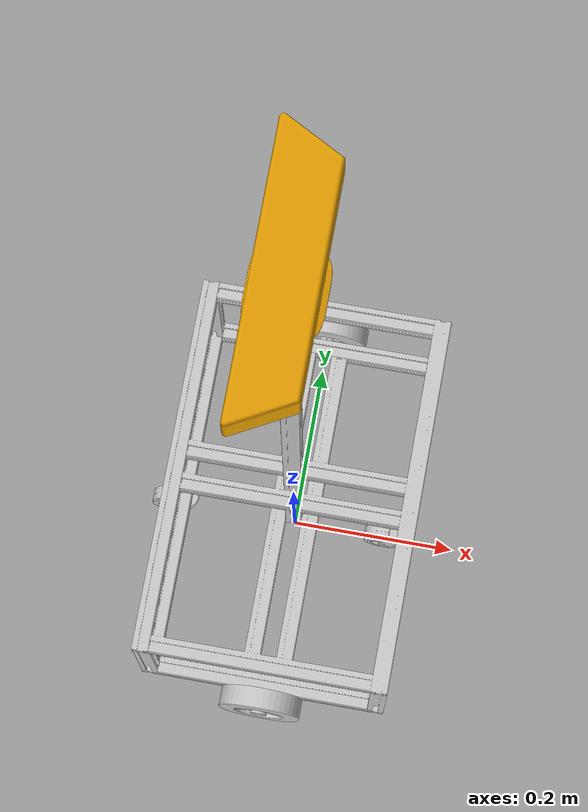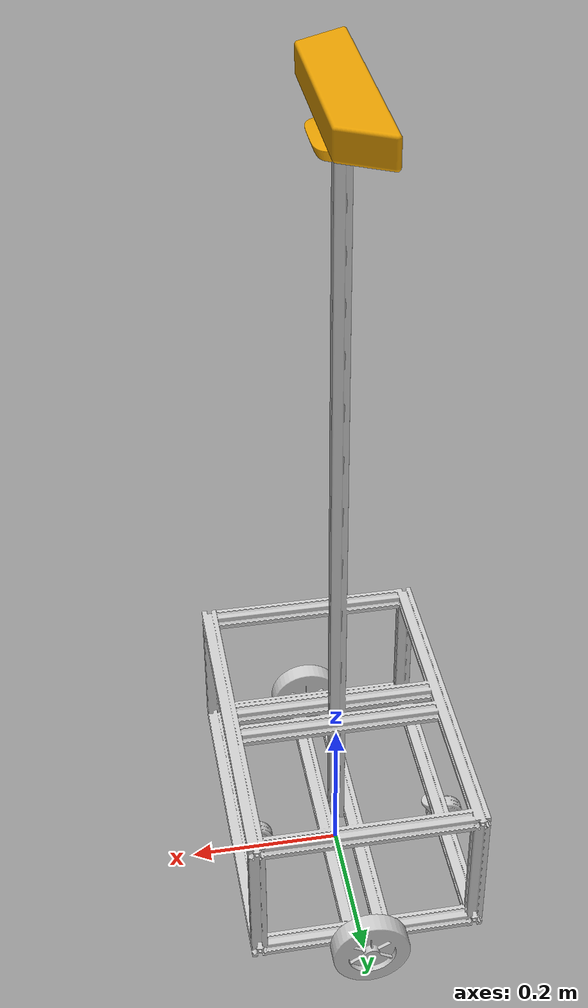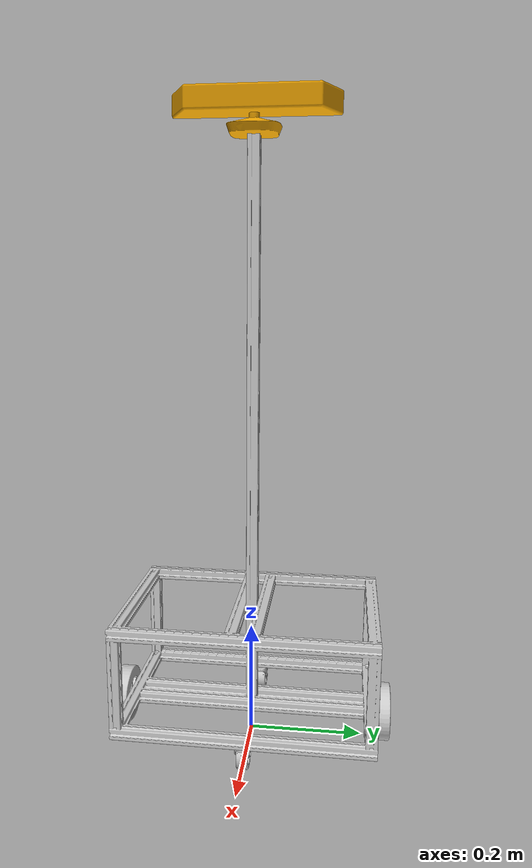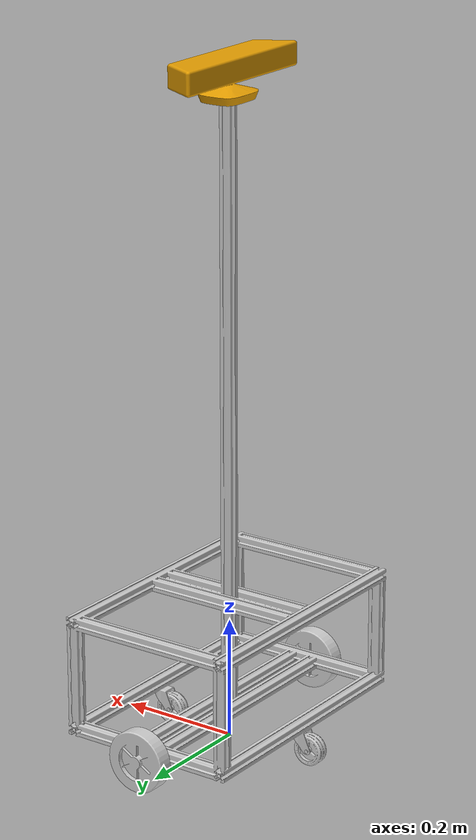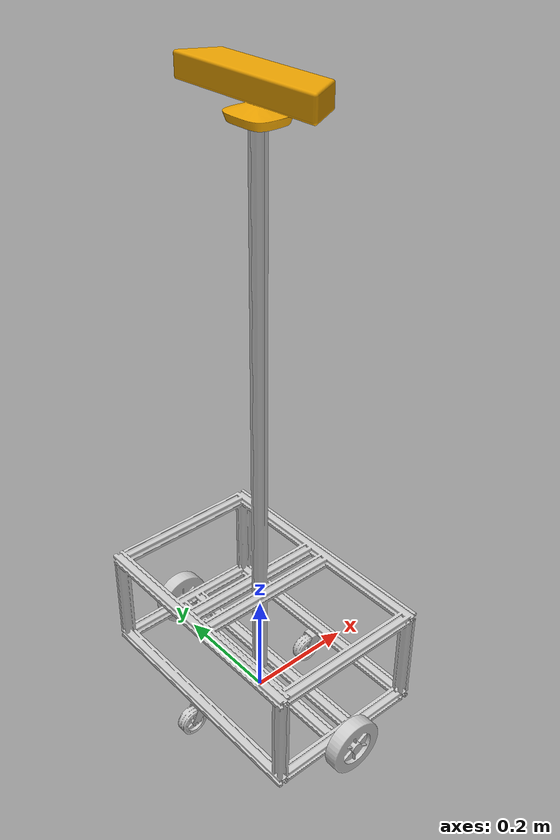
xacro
<?xml version="1.0"?>
  <robot xmlns:xacro="http://ros.org/wiki/xacro" name="anya_base">

  <xacro:include filename="$(find anya_slam1)/urdf/kinect.urdf.xacro" />
  <xacro:include filename="$(find anya_slam1)/urdf/wheel.urdf.xacro"  />

  <xacro:property name="brs_l" value="-1.59" />
  <xacro:property name="brs_u" value="1.59"  />

  <xacro:property name="bls_l" value="-1.59" />
  <xacro:property name="bls_u" value="1.59"  />

  <xacro:property name="bh_l" value="-3.14159" />
  <xacro:property name="bh_u" value="3.14159"  />

   <link name="base_link">
   </link>

   <link name="body_link">

    <visual>
      <origin rpy="0 0 0" xyz="0 -0.048 0"/>
      <geometry>
         <mesh filename="package://anya_slam1/meshes/frame.dae" scale="0.001 0.001 0.001"/>
      </geometry>
    </visual>

    <collision>
      <origin rpy="0 0 0" xyz="0 -0.048 0" />
      <geometry>
        <mesh filename="package://anya_slam1/meshes/frame.stl" scale="0.001 0.001 0.001"/>
      </geometry><limit lower="${brs_l}" upper="${brs_u}" velocity="1.0" effort="60.0"/>
    </collision>

    <inertial>
      <mass value="2600"/>
      <origin rpy="0 0 0" xyz="0 -0.048 0"/>
      <inertia ixx="100" ixy="0" ixz="0" iyy="100" iyz="0" izz="100"/>
    </inertial>
   </link>

   <joint name="world_joint" type="fixed">
     <parent link="base_link"/>
     <child link="body_link"/>
     <origin xyz="0.0 0.0 0.0" rpy="-1.5750 0.0 0.0"/>
   </joint>

<!-- 4 wheels -->
<!-- Leftwheel -->

     <joint name="joint_left_wheel" type="continuous">
         <parent link="body_link"/>
         <child link="link_left_wheel"/>
         <axis xyz="1 0 0"/>
         <origin xyz="0 -0.050 -0.251" rpy="0 1.5750 0"/>
     </joint>

<!-- Rightwheel -->

     <joint name="joint_right_wheel" type="continuous">
         <parent link="body_link"/>
         <child link="link_right_wheel"/>
         <axis xyz="1 0 0"/>
         <origin xyz="0 -0.050 0.251" rpy="0.0 4.71239 0.0"/>
     </joint>

<!-- Joint_castor_front-->
<!-- Frame-->
    <joint name="joint_castor_frame_front" type="continuous">
         <parent link="body_link"/>
         <child link="castor_frame_link_front"/>
         <axis xyz="0 0 1"/>
         <origin xyz="0.135 -0.048 0" rpy="1.5750 0 0"/>
     </joint>

 <!-- Wheel-->
    <joint name="joint_castor_wheel_front" type="continuous">
         <parent link="castor_frame_link_front"/>
         <child link="castor_wheel_link_front"/>
         <axis xyz="0 1 0"/>
         <origin xyz="-0.02125 -0.0125 -0.030" rpy="0 0 0"/>
     </joint>

<!-- Joint_castor_back-->
<!-- Frame-->
    <joint name="joint_castor_frame_back" type="continuous">
         <parent link="body_link"/>
         <child link="castor_frame_link_back"/>
         <axis xyz="0 0 1"/>
         <origin xyz="-0.135 -0.048 0" rpy="1.5750 0 0"/>
     </joint>

 <!-- Wheel-->
    <joint name="joint_castor_wheel_back" type="continuous">
         <parent link="castor_frame_link_back"/>
         <child link="castor_wheel_link_back"/>
         <axis xyz="0 1 0"/>
         <origin xyz="-0.02125 -0.0125 -0.030" rpy="0 0 0"/>
     </joint>

 <!-- Kinect-->
      <joint name="body_kinect" type="fixed">
         <parent link="body_link"/>
         <child link="kinect_link"/>
         <origin xyz="0 -1.075 0" rpy="1.5750 3.14159 0"/>
    </joint>

<!--ONE-->
<transmission name ="Trans_1">
  <type>transmission_interface/SimpleTransmission</type>
  <joint name="joint_left_wheel">
      <hardwareInterface>hardware_interface/VelocityJointInterface</hardwareInterface>
  </joint>
  <actuator name="Motor1">
      <hardwareInterface>hardware_interface/VelocityJointInterface</hardwareInterface>
      <mechanicalReduction>1</mechanicalReduction>
  </actuator>
</transmission>

<!--Two-->
<transmission name ="Trans_2">
  <type>transmission_interface/SimpleTransmission</type>
  <joint name="joint_right_wheel">
      <hardwareInterface>hardware_interface/VelocityJointInterface</hardwareInterface>
  </joint>
  <actuator name="Motor1">
    <hardwareInterface>hardware_interface/VelocityJointInterface</hardwareInterface>
    <mechanicalReduction>1</mechanicalReduction>
  </actuator>
</transmission>

<gazebo>
    <plugin name="control" filename="libgazebo_ros_control.so"/>
</gazebo>

<gazebo>
<plugin name="joint_state_publisher" filename="libgazebo_ros_joint_state_publisher.so">
        <jointName>joint_left_wheel,joint_right_wheel,joint_castor_frame_front,joint_castor_wheel_front,joint_castor_frame_back,joint_castor_wheel_back</jointName>
    </plugin>
</gazebo>

</robot>

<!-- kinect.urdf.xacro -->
<robot xmlns:xacro="http://ros.org/wiki/xacro" name="anya_kinectkinect">

    <link name="kinect_link">
        <visual>
            <origin xyz="0 0 0" rpy="0 0 1.57079632679"/>
            <geometry>
                <mesh filename="package://anya_final/meshes/sensors/kinect.dae" />
            </geometry>
        </visual>
        <collision>
            <origin xyz="0 0 0" rpy="0 0 1.57079632679"/>
            <geometry>
                <mesh filename="package://anya_final/meshes/sensors/kinect.stl" />
            </geometry>
        </collision>
        <inertial>
            <origin xyz="0.0 0.0 0.0" rpy="0.0 0.0 1.5707932"/>
            <mass value="10.0"/>
            <inertia ixx="0.0" ixy="0.0" ixz="0.0" iyy="0.0" iyz="0.0" izz="0.0"/>
        </inertial>
    </link>

        <link name="kinect_depth_frame"/>
        <joint name="kinect_depth_joint" type="fixed">
            <parent link="kinect_link"/>
            <child link="kinect_depth_frame" />
            <origin xyz="0 -0.02  0" rpy="0 0 0"/>
        </joint>

        <link name="kinect_rgb_frame"/>
        <joint name="kinect_rgb_joint" type="fixed">
            <parent link="kinect_link"/>
            <child link="kinect_rgb_frame" />
            <origin xyz="0 -0.045  0" rpy="0 0 0"/>
        </joint>

        <link name="kinect_depth_optical_frame"/>
        <joint name="kinect_depth_optical_joint" type="fixed">
            <parent link="kinect_depth_frame"/>
            <child link="kinect_depth_optical_frame" />
            <origin xyz="0 0 0" rpy="1.57079632679 0 1.57079632679"/>
        </joint>

        <link name="kinect_rgb_optical_frame"/>
        <joint name="kinect_rgb_optical_joint" type="fixed">
            <parent link="kinect_rgb_frame"/>
            <child link="kinect_rgb_optical_frame" />
            <origin xyz="0 0 0" rpy="1.57079632679 0 1.57079632679"/>
        </joint>

        <gazebo reference="kinect_link">
            <sensor type="depth" name="kinect">
                <always_on>true</always_on>
                <update_rate>20.0</update_rate>
                <camera>
                    <horizontal_fov>1.047198</horizontal_fov>
                    <image>
                        <format>R8G8B8</format>
                        <width>640</width>
                        <height>480</height>
                    </image>
                    <clip>
                        <near>0.05</near>
                        <far>3.0</far>
                    </clip>
                </camera>
                <plugin name="kinect_controller" filename="libgazebo_ros_openni_kinect.so">
                    <cameraName>anya_kinect</cameraName>
                    <alwaysOn>true</alwaysOn>
                    <updateRate>0</updateRate>
                    <imageTopicName>/camera/color/image_raw</imageTopicName>
                    <cameraInfoTopicName>/camera/color/camera_info</cameraInfoTopicName>
                    <depthImageTopicName>/camera/depth/image_raw</depthImageTopicName>
                    <depthImageCameraInfoTopicName>/camera/depth/camera_info</depthImageCameraInfoTopicName>
                    <pointCloudTopicName>/camera/depth/points</pointCloudTopicName>
                    <frameName>kinect_link</frameName>
                    <baseline>0.1</baseline>
                    <distortion_k1>0.0</distortion_k1>
                    <distortion_k2>0.0</distortion_k2>
                    <distortion_k3>0.0</distortion_k3>
                    <distortion_t1>0.0</distortion_t1>
                    <distortion_t2>0.0</distortion_t2>
                    <pointCloudCutoff>0.5</pointCloudCutoff>
                    <pointCloudCutoffMax>3.0</pointCloudCutoffMax>
                </plugin>
            </sensor>
        </gazebo>
</robot>

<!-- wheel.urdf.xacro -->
<robot xmlns:xacro="http://ros.org/wiki/xacro" name="anya_wheel">

<!-- Left Wheel link -->

   <link name="link_left_wheel">
    <inertial>
      <mass value="187"/>
      <origin rpy="0 0 0" xyz="0 0 0"/>
      <inertia ixx="100" ixy="0" ixz="0" iyy="100" iyz="0" izz="100"/>
    </inertial>

    <collision>
       <origin rpy="0 0 0" xyz="0 0 0" />
      <geometry>
        <mesh filename="package://anya_slam1/meshes/wheel.stl" scale="0.001 0.001 0.001"/>
      </geometry>
    </collision>

    <visual>
      <origin rpy="0 0 0" xyz="0 0 0"/>
      <geometry>
         <mesh filename="package://anya_slam1/meshes/wheel.dae" scale="0.001 0.001 0.001"/>
      </geometry>
    </visual>
  </link>

  <!-- Right Wheel link -->

  <link name="link_right_wheel">
    <inertial>
      <mass value="187"/>
      <origin rpy="0 0 0" xyz="0 0 0"/>
      <inertia ixx="100" ixy="0" ixz="0" iyy="100" iyz="0" izz="100"/>
    </inertial>

    <collision>
       <origin rpy="0 0 0" xyz="0 0 0" />
      <geometry>
        <mesh filename="package://anya_slam1/meshes/wheel.stl" scale="0.001 0.001 0.001"/>
      </geometry>
    </collision>

    <visual>
      <origin rpy="0 0 0" xyz="0 0 0"/>
      <geometry>
         <mesh filename="package://anya_slam1/meshes/wheel.dae" scale="0.001 0.001 0.001"/>
      </geometry>
    </visual>
  </link>

 <!-- Castor Front Wheel link -->

  <!-- Castor back Wheel link -->

<!-- Castor_frame front link-->
  <link name="castor_frame_link_front">
    <inertial>
      <mass value="75"/>
      <origin rpy="0 0 0" xyz="0 0 0"/>
      <inertia ixx="100" ixy="0" ixz="0" iyy="100" iyz="0" izz="100"/>
    </inertial>

    <collision>
      <origin rpy="0 0 0" xyz="0 0 0" />
      <geometry>
        <mesh filename="package://anya_slam1/meshes/castor_frame.stl" scale="0.5 0.5 0.5"/>
      </geometry>
    </collision>

    <visual>
      <origin rpy="0 0 0" xyz="0 0 0"/>
      <geometry>
         <mesh filename="package://anya_slam1/meshes/castor_frame.dae" scale="0.5 0.5 0.5"/>
      </geometry>
    </visual>
  </link>
 <!-- Castor_wheel_front link-->

<link name="castor_wheel_link_front">
    <inertial>
      <mass value="100"/>
      <origin rpy="0 0 0" xyz="0 0 0"/>
      <inertia ixx="100" ixy="0" ixz="0" iyy="100" iyz="0" izz="100"/>
    </inertial>

    <collision>
      <origin rpy="0 0 0" xyz="0 0 0" />
      <geometry>
        <mesh filename="package://anya_slam1/meshes/castor_wheel.stl" scale="0.5 0.5 0.5"/>
      </geometry>
    </collision>

    <visual>
      <origin rpy="0 0 0" xyz="0 0 0"/>
      <geometry>
         <mesh filename="package://anya_slam1/meshes/castor_wheel.dae" scale="0.5 0.5 0.5"/>
      </geometry>
    </visual>
  </link>

<!-- Castor_frame back link-->
  <link name="castor_frame_link_back">
    <inertial>
      <mass value="75"/>
      <origin rpy="0 0 0" xyz="0 0 0"/>
      <inertia ixx="100" ixy="0" ixz="0" iyy="100" iyz="0" izz="100"/>
    </inertial>

    <collision>
      <origin rpy="0 0 0" xyz="0 0 0" />
      <geometry>
        <mesh filename="package://anya_slam1/meshes/castor_frame.stl" scale="0.5 0.5 0.5"/>
      </geometry>
    </collision>

    <visual>
      <origin rpy="0 0 0" xyz="0 0 0"/>
      <geometry>
         <mesh filename="package://anya_slam1/meshes/castor_frame.dae" scale="0.5 0.5 0.5"/>
      </geometry>
    </visual>
  </link>
 <!-- Castor_wheel_back link-->

<link name="castor_wheel_link_back">
    <inertial>
      <mass value="100"/>
      <origin rpy="0 0 0" xyz="0 0 0"/>
      <inertia ixx="100" ixy="0" ixz="0" iyy="100" iyz="0" izz="100"/>
    </inertial>

    <collision>
      <origin rpy="0 0 0" xyz="0 0 0" />
      <geometry>
        <mesh filename="package://anya_slam1/meshes/castor_wheel.stl" scale="0.5 0.5 0.5"/>
      </geometry>
    </collision>

    <visual>
      <origin rpy="0 0 0" xyz="0 0 0"/>
      <geometry>
         <mesh filename="package://anya_slam1/meshes/castor_wheel.dae" scale="0.5 0.5 0.5"/>
      </geometry>
    </visual>
  </link>

  </robot>
